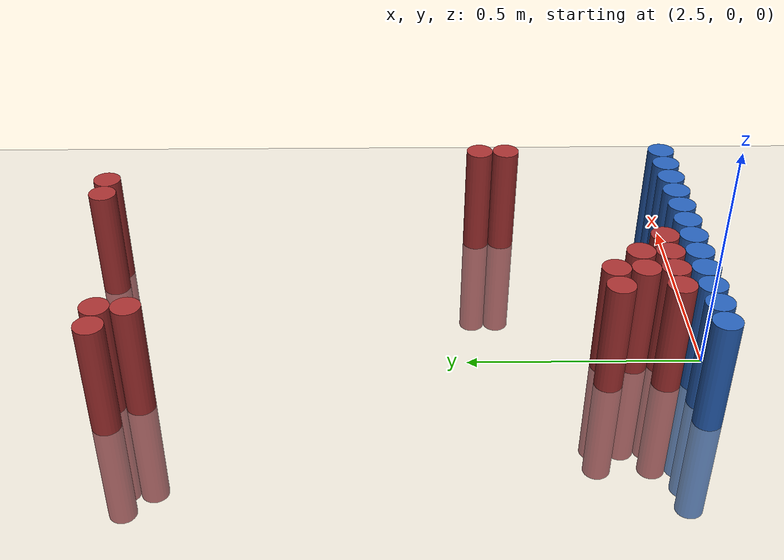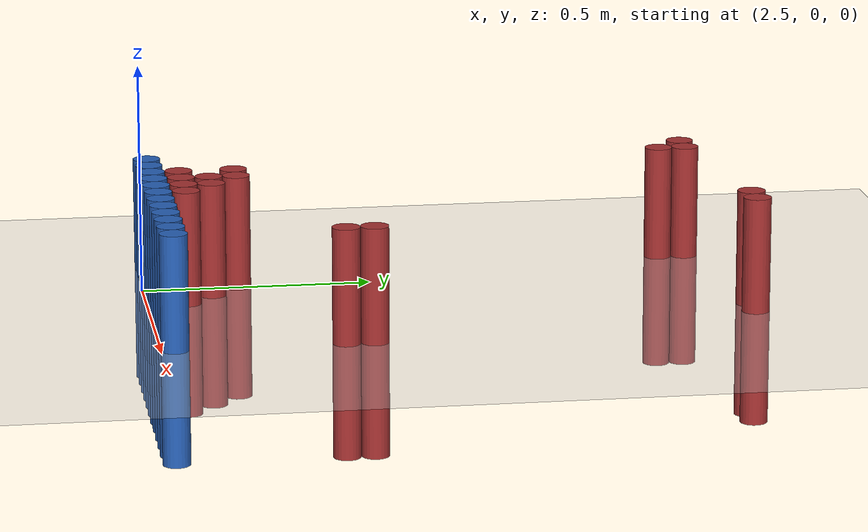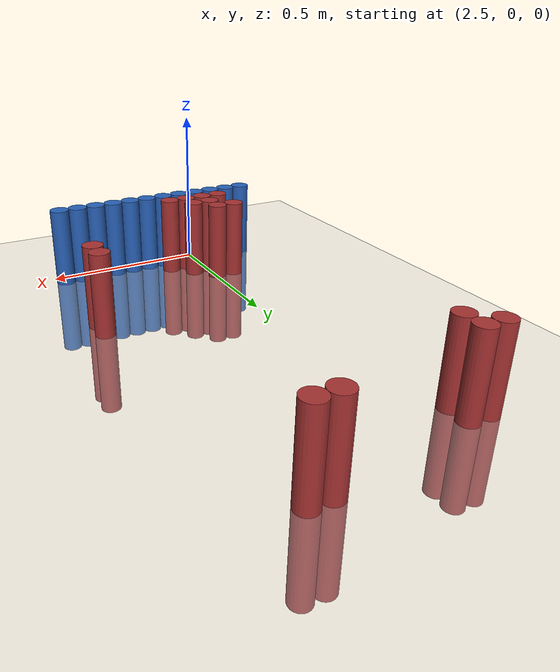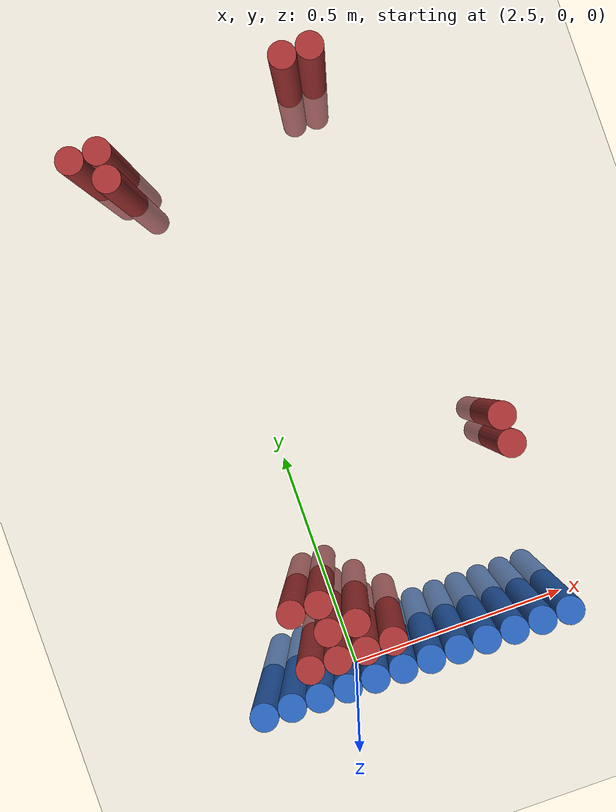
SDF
<sdf version="1.6">
 <world name="default">
  <model name="ground_plane">
   <static>1</static>
   <link name="link">
    <collision name="collision">
     <geometry><plane><normal>0 0 1</normal><size>100 100</size></plane></geometry>
     <surface><friction><ode><mu>100</mu><mu2>50</mu2></ode></friction></surface>
    </collision>
    <visual name="visual">
     <cast_shadows>0</cast_shadows>
     <geometry><plane><normal>0 0 1</normal><size>100 100</size></plane></geometry>
     <material>
      <script><uri>file://media/materials/scripts/gazebo.material</uri><name>Gazebo/Grey</name></script>
     </material>
    </visual>
   </link>
  </model>
  <model name="unit_cylinder_154">
   <static>1</static>
   <pose>2.790000 1.290000 0.000000 0.000000 0.000000 0.000000</pose>
   <link name="link">
    <inertial>
     <mass>1</mass>
     <inertia><ixx>0.145833</ixx><ixy>0</ixy><ixz>0</ixz><iyy>0.145833</iyy><iyz>0</iyz><izz>0.125</izz></inertia>
    </inertial>
    <collision name="collision">
     <geometry><cylinder><radius>0.030000</radius><length>0.5</length></cylinder></geometry>
    </collision>
    <visual name="visual">
     <geometry><cylinder><radius>0.030000</radius><length>0.5</length></cylinder></geometry>
     <material>
      <ambient>0.648000 0.192000 0.192000 1</ambient>
      <diffuse>0.648000 0.192000 0.192000 1</diffuse>
     </material>
     <material>
      <script><name>Gazebo/Grey</name><uri>file://media/materials/scripts/gazebo.material</uri></script>
     </material>
    </visual>
   </link>
  </model>
  <model name="unit_cylinder_155">
   <static>1</static>
   <pose>2.850000 1.290000 0.000000 0.000000 0.000000 0.000000</pose>
   <link name="link">
    <inertial>
     <mass>1</mass>
     <inertia><ixx>0.145833</ixx><ixy>0</ixy><ixz>0</ixz><iyy>0.145833</iyy><iyz>0</iyz><izz>0.125</izz></inertia>
    </inertial>
    <collision name="collision">
     <geometry><cylinder><radius>0.030000</radius><length>0.5</length></cylinder></geometry>
    </collision>
    <visual name="visual">
     <geometry><cylinder><radius>0.030000</radius><length>0.5</length></cylinder></geometry>
     <material>
      <ambient>0.648000 0.192000 0.192000 1</ambient>
      <diffuse>0.648000 0.192000 0.192000 1</diffuse>
     </material>
     <material>
      <script><name>Gazebo/Grey</name><uri>file://media/materials/scripts/gazebo.material</uri></script>
     </material>
    </visual>
   </link>
  </model>
  <model name="unit_cylinder_159">
   <static>1</static>
   <pose>2.310000 1.230000 0.000000 0.000000 0.000000 0.000000</pose>
   <link name="link">
    <inertial>
     <mass>1</mass>
     <inertia><ixx>0.145833</ixx><ixy>0</ixy><ixz>0</ixz><iyy>0.145833</iyy><iyz>0</iyz><izz>0.125</izz></inertia>
    </inertial>
    <collision name="collision">
     <geometry><cylinder><radius>0.030000</radius><length>0.5</length></cylinder></geometry>
    </collision>
    <visual name="visual">
     <geometry><cylinder><radius>0.030000</radius><length>0.5</length></cylinder></geometry>
     <material>
      <ambient>0.648000 0.192000 0.192000 1</ambient>
      <diffuse>0.648000 0.192000 0.192000 1</diffuse>
     </material>
     <material>
      <script><name>Gazebo/Grey</name><uri>file://media/materials/scripts/gazebo.material</uri></script>
     </material>
    </visual>
   </link>
  </model>
  <model name="unit_cylinder_160">
   <static>1</static>
   <pose>2.370000 1.230000 0.000000 0.000000 0.000000 0.000000</pose>
   <link name="link">
    <inertial>
     <mass>1</mass>
     <inertia><ixx>0.145833</ixx><ixy>0</ixy><ixz>0</ixz><iyy>0.145833</iyy><iyz>0</iyz><izz>0.125</izz></inertia>
    </inertial>
    <collision name="collision">
     <geometry><cylinder><radius>0.030000</radius><length>0.5</length></cylinder></geometry>
    </collision>
    <visual name="visual">
     <geometry><cylinder><radius>0.030000</radius><length>0.5</length></cylinder></geometry>
     <material>
      <ambient>0.648000 0.192000 0.192000 1</ambient>
      <diffuse>0.648000 0.192000 0.192000 1</diffuse>
     </material>
     <material>
      <script><name>Gazebo/Grey</name><uri>file://media/materials/scripts/gazebo.material</uri></script>
     </material>
    </visual>
   </link>
  </model>
  <model name="unit_cylinder_163">
   <static>1</static>
   <pose>2.370000 1.170000 0.000000 0.000000 0.000000 0.000000</pose>
   <link name="link">
    <inertial>
     <mass>1</mass>
     <inertia><ixx>0.145833</ixx><ixy>0</ixy><ixz>0</ixz><iyy>0.145833</iyy><iyz>0</iyz><izz>0.125</izz></inertia>
    </inertial>
    <collision name="collision">
     <geometry><cylinder><radius>0.030000</radius><length>0.5</length></cylinder></geometry>
    </collision>
    <visual name="visual">
     <geometry><cylinder><radius>0.030000</radius><length>0.5</length></cylinder></geometry>
     <material>
      <ambient>0.648000 0.192000 0.192000 1</ambient>
      <diffuse>0.648000 0.192000 0.192000 1</diffuse>
     </material>
     <material>
      <script><name>Gazebo/Grey</name><uri>file://media/materials/scripts/gazebo.material</uri></script>
     </material>
    </visual>
   </link>
  </model>
  <model name="unit_cylinder_169">
   <static>1</static>
   <pose>2.970000 0.450000 0.000000 0.000000 0.000000 0.000000</pose>
   <link name="link">
    <inertial>
     <mass>1</mass>
     <inertia><ixx>0.145833</ixx><ixy>0</ixy><ixz>0</ixz><iyy>0.145833</iyy><iyz>0</iyz><izz>0.125</izz></inertia>
    </inertial>
    <collision name="collision">
     <geometry><cylinder><radius>0.030000</radius><length>0.5</length></cylinder></geometry>
    </collision>
    <visual name="visual">
     <geometry><cylinder><radius>0.030000</radius><length>0.5</length></cylinder></geometry>
     <material>
      <ambient>0.648000 0.192000 0.192000 1</ambient>
      <diffuse>0.648000 0.192000 0.192000 1</diffuse>
     </material>
     <material>
      <script><name>Gazebo/Grey</name><uri>file://media/materials/scripts/gazebo.material</uri></script>
     </material>
    </visual>
   </link>
  </model>
  <model name="unit_cylinder_171">
   <static>1</static>
   <pose>2.970000 0.390000 0.000000 0.000000 0.000000 0.000000</pose>
   <link name="link">
    <inertial>
     <mass>1</mass>
     <inertia><ixx>0.145833</ixx><ixy>0</ixy><ixz>0</ixz><iyy>0.145833</iyy><iyz>0</iyz><izz>0.125</izz></inertia>
    </inertial>
    <collision name="collision">
     <geometry><cylinder><radius>0.030000</radius><length>0.5</length></cylinder></geometry>
    </collision>
    <visual name="visual">
     <geometry><cylinder><radius>0.030000</radius><length>0.5</length></cylinder></geometry>
     <material>
      <ambient>0.648000 0.192000 0.192000 1</ambient>
      <diffuse>0.648000 0.192000 0.192000 1</diffuse>
     </material>
     <material>
      <script><name>Gazebo/Grey</name><uri>file://media/materials/scripts/gazebo.material</uri></script>
     </material>
    </visual>
   </link>
  </model>
  <model name="unit_cylinder_172">
   <static>1</static>
   <pose>2.430000 0.210000 0.000000 0.000000 0.000000 0.000000</pose>
   <link name="link">
    <inertial>
     <mass>1</mass>
     <inertia><ixx>0.145833</ixx><ixy>0</ixy><ixz>0</ixz><iyy>0.145833</iyy><iyz>0</iyz><izz>0.125</izz></inertia>
    </inertial>
    <collision name="collision">
     <geometry><cylinder><radius>0.030000</radius><length>0.5</length></cylinder></geometry>
    </collision>
    <visual name="visual">
     <geometry><cylinder><radius>0.030000</radius><length>0.5</length></cylinder></geometry>
     <material>
      <ambient>0.648000 0.192000 0.192000 1</ambient>
      <diffuse>0.648000 0.192000 0.192000 1</diffuse>
     </material>
     <material>
      <script><name>Gazebo/Grey</name><uri>file://media/materials/scripts/gazebo.material</uri></script>
     </material>
    </visual>
   </link>
  </model>
  <model name="unit_cylinder_173">
   <static>1</static>
   <pose>2.490000 0.210000 0.000000 0.000000 0.000000 0.000000</pose>
   <link name="link">
    <inertial>
     <mass>1</mass>
     <inertia><ixx>0.145833</ixx><ixy>0</ixy><ixz>0</ixz><iyy>0.145833</iyy><iyz>0</iyz><izz>0.125</izz></inertia>
    </inertial>
    <collision name="collision">
     <geometry><cylinder><radius>0.030000</radius><length>0.5</length></cylinder></geometry>
    </collision>
    <visual name="visual">
     <geometry><cylinder><radius>0.030000</radius><length>0.5</length></cylinder></geometry>
     <material>
      <ambient>0.648000 0.192000 0.192000 1</ambient>
      <diffuse>0.648000 0.192000 0.192000 1</diffuse>
     </material>
     <material>
      <script><name>Gazebo/Grey</name><uri>file://media/materials/scripts/gazebo.material</uri></script>
     </material>
    </visual>
   </link>
  </model>
  <model name="unit_cylinder_174">
   <static>1</static>
   <pose>2.490000 0.150000 0.000000 0.000000 0.000000 0.000000</pose>
   <link name="link">
    <inertial>
     <mass>1</mass>
     <inertia><ixx>0.145833</ixx><ixy>0</ixy><ixz>0</ixz><iyy>0.145833</iyy><iyz>0</iyz><izz>0.125</izz></inertia>
    </inertial>
    <collision name="collision">
     <geometry><cylinder><radius>0.030000</radius><length>0.5</length></cylinder></geometry>
    </collision>
    <visual name="visual">
     <geometry><cylinder><radius>0.030000</radius><length>0.5</length></cylinder></geometry>
     <material>
      <ambient>0.648000 0.192000 0.192000 1</ambient>
      <diffuse>0.648000 0.192000 0.192000 1</diffuse>
     </material>
     <material>
      <script><name>Gazebo/Grey</name><uri>file://media/materials/scripts/gazebo.material</uri></script>
     </material>
    </visual>
   </link>
  </model>
  <model name="unit_cylinder_175">
   <static>1</static>
   <pose>2.550000 0.150000 0.000000 0.000000 0.000000 0.000000</pose>
   <link name="link">
    <inertial>
     <mass>1</mass>
     <inertia><ixx>0.145833</ixx><ixy>0</ixy><ixz>0</ixz><iyy>0.145833</iyy><iyz>0</iyz><izz>0.125</izz></inertia>
    </inertial>
    <collision name="collision">
     <geometry><cylinder><radius>0.030000</radius><length>0.5</length></cylinder></geometry>
    </collision>
    <visual name="visual">
     <geometry><cylinder><radius>0.030000</radius><length>0.5</length></cylinder></geometry>
     <material>
      <ambient>0.648000 0.192000 0.192000 1</ambient>
      <diffuse>0.648000 0.192000 0.192000 1</diffuse>
     </material>
     <material>
      <script><name>Gazebo/Grey</name><uri>file://media/materials/scripts/gazebo.material</uri></script>
     </material>
    </visual>
   </link>
  </model>
  <model name="unit_cylinder_179">
   <static>1</static>
   <pose>2.430000 0.090000 0.000000 0.000000 0.000000 0.000000</pose>
   <link name="link">
    <inertial>
     <mass>1</mass>
     <inertia><ixx>0.145833</ixx><ixy>0</ixy><ixz>0</ixz><iyy>0.145833</iyy><iyz>0</iyz><izz>0.125</izz></inertia>
    </inertial>
    <collision name="collision">
     <geometry><cylinder><radius>0.030000</radius><length>0.5</length></cylinder></geometry>
    </collision>
    <visual name="visual">
     <geometry><cylinder><radius>0.030000</radius><length>0.5</length></cylinder></geometry>
     <material>
      <ambient>0.648000 0.192000 0.192000 1</ambient>
      <diffuse>0.648000 0.192000 0.192000 1</diffuse>
     </material>
     <material>
      <script><name>Gazebo/Grey</name><uri>file://media/materials/scripts/gazebo.material</uri></script>
     </material>
    </visual>
   </link>
  </model>
  <model name="unit_cylinder_180">
   <static>1</static>
   <pose>2.490000 0.090000 0.000000 0.000000 0.000000 0.000000</pose>
   <link name="link">
    <inertial>
     <mass>1</mass>
     <inertia><ixx>0.145833</ixx><ixy>0</ixy><ixz>0</ixz><iyy>0.145833</iyy><iyz>0</iyz><izz>0.125</izz></inertia>
    </inertial>
    <collision name="collision">
     <geometry><cylinder><radius>0.030000</radius><length>0.5</length></cylinder></geometry>
    </collision>
    <visual name="visual">
     <geometry><cylinder><radius>0.030000</radius><length>0.5</length></cylinder></geometry>
     <material>
      <ambient>0.648000 0.192000 0.192000 1</ambient>
      <diffuse>0.648000 0.192000 0.192000 1</diffuse>
     </material>
     <material>
      <script><name>Gazebo/Grey</name><uri>file://media/materials/scripts/gazebo.material</uri></script>
     </material>
    </visual>
   </link>
  </model>
  <model name="unit_cylinder_181">
   <static>1</static>
   <pose>2.550000 0.090000 0.000000 0.000000 0.000000 0.000000</pose>
   <link name="link">
    <inertial>
     <mass>1</mass>
     <inertia><ixx>0.145833</ixx><ixy>0</ixy><ixz>0</ixz><iyy>0.145833</iyy><iyz>0</iyz><izz>0.125</izz></inertia>
    </inertial>
    <collision name="collision">
     <geometry><cylinder><radius>0.030000</radius><length>0.5</length></cylinder></geometry>
    </collision>
    <visual name="visual">
     <geometry><cylinder><radius>0.030000</radius><length>0.5</length></cylinder></geometry>
     <material>
      <ambient>0.648000 0.192000 0.192000 1</ambient>
      <diffuse>0.648000 0.192000 0.192000 1</diffuse>
     </material>
     <material>
      <script><name>Gazebo/Grey</name><uri>file://media/materials/scripts/gazebo.material</uri></script>
     </material>
    </visual>
   </link>
  </model>
  <model name="unit_cylinder_182">
   <static>1</static>
   <pose>2.610000 0.090000 0.000000 0.000000 0.000000 0.000000</pose>
   <link name="link">
    <inertial>
     <mass>1</mass>
     <inertia><ixx>0.145833</ixx><ixy>0</ixy><ixz>0</ixz><iyy>0.145833</iyy><iyz>0</iyz><izz>0.125</izz></inertia>
    </inertial>
    <collision name="collision">
     <geometry><cylinder><radius>0.030000</radius><length>0.5</length></cylinder></geometry>
    </collision>
    <visual name="visual">
     <geometry><cylinder><radius>0.030000</radius><length>0.5</length></cylinder></geometry>
     <material>
      <ambient>0.648000 0.192000 0.192000 1</ambient>
      <diffuse>0.648000 0.192000 0.192000 1</diffuse>
     </material>
     <material>
      <script><name>Gazebo/Grey</name><uri>file://media/materials/scripts/gazebo.material</uri></script>
     </material>
    </visual>
   </link>
  </model>
  <model name="unit_cylinder_189">
   <static>1</static>
   <pose>2.310000 0.030000 0.000000 0.000000 0.000000 0.000000</pose>
   <link name="link">
    <inertial>
     <mass>1</mass>
     <inertia><ixx>0.145833</ixx><ixy>0</ixy><ixz>0</ixz><iyy>0.145833</iyy><iyz>0</iyz><izz>0.125</izz></inertia>
    </inertial>
    <collision name="collision">
     <geometry><cylinder><radius>0.030000</radius><length>0.5</length></cylinder></geometry>
    </collision>
    <visual name="visual">
     <geometry><cylinder><radius>0.030000</radius><length>0.5</length></cylinder></geometry>
     <material>
      <ambient>0.152000 0.379000 0.720000 1</ambient>
      <diffuse>0.152000 0.379000 0.720000 1</diffuse>
     </material>
     <material>
      <script><name>Gazebo/Grey</name><uri>file://media/materials/scripts/gazebo.material</uri></script>
     </material>
    </visual>
   </link>
  </model>
  <model name="unit_cylinder_190">
   <static>1</static>
   <pose>2.370000 0.030000 0.000000 0.000000 0.000000 0.000000</pose>
   <link name="link">
    <inertial>
     <mass>1</mass>
     <inertia><ixx>0.145833</ixx><ixy>0</ixy><ixz>0</ixz><iyy>0.145833</iyy><iyz>0</iyz><izz>0.125</izz></inertia>
    </inertial>
    <collision name="collision">
     <geometry><cylinder><radius>0.030000</radius><length>0.5</length></cylinder></geometry>
    </collision>
    <visual name="visual">
     <geometry><cylinder><radius>0.030000</radius><length>0.5</length></cylinder></geometry>
     <material>
      <ambient>0.152000 0.379000 0.720000 1</ambient>
      <diffuse>0.152000 0.379000 0.720000 1</diffuse>
     </material>
     <material>
      <script><name>Gazebo/Grey</name><uri>file://media/materials/scripts/gazebo.material</uri></script>
     </material>
    </visual>
   </link>
  </model>
  <model name="unit_cylinder_191">
   <static>1</static>
   <pose>2.430000 0.030000 0.000000 0.000000 0.000000 0.000000</pose>
   <link name="link">
    <inertial>
     <mass>1</mass>
     <inertia><ixx>0.145833</ixx><ixy>0</ixy><ixz>0</ixz><iyy>0.145833</iyy><iyz>0</iyz><izz>0.125</izz></inertia>
    </inertial>
    <collision name="collision">
     <geometry><cylinder><radius>0.030000</radius><length>0.5</length></cylinder></geometry>
    </collision>
    <visual name="visual">
     <geometry><cylinder><radius>0.030000</radius><length>0.5</length></cylinder></geometry>
     <material>
      <ambient>0.152000 0.379000 0.720000 1</ambient>
      <diffuse>0.152000 0.379000 0.720000 1</diffuse>
     </material>
     <material>
      <script><name>Gazebo/Grey</name><uri>file://media/materials/scripts/gazebo.material</uri></script>
     </material>
    </visual>
   </link>
  </model>
  <model name="unit_cylinder_192">
   <static>1</static>
   <pose>2.490000 0.030000 0.000000 0.000000 0.000000 0.000000</pose>
   <link name="link">
    <inertial>
     <mass>1</mass>
     <inertia><ixx>0.145833</ixx><ixy>0</ixy><ixz>0</ixz><iyy>0.145833</iyy><iyz>0</iyz><izz>0.125</izz></inertia>
    </inertial>
    <collision name="collision">
     <geometry><cylinder><radius>0.030000</radius><length>0.5</length></cylinder></geometry>
    </collision>
    <visual name="visual">
     <geometry><cylinder><radius>0.030000</radius><length>0.5</length></cylinder></geometry>
     <material>
      <ambient>0.152000 0.379000 0.720000 1</ambient>
      <diffuse>0.152000 0.379000 0.720000 1</diffuse>
     </material>
     <material>
      <script><name>Gazebo/Grey</name><uri>file://media/materials/scripts/gazebo.material</uri></script>
     </material>
    </visual>
   </link>
  </model>
  <model name="unit_cylinder_193">
   <static>1</static>
   <pose>2.550000 0.030000 0.000000 0.000000 0.000000 0.000000</pose>
   <link name="link">
    <inertial>
     <mass>1</mass>
     <inertia><ixx>0.145833</ixx><ixy>0</ixy><ixz>0</ixz><iyy>0.145833</iyy><iyz>0</iyz><izz>0.125</izz></inertia>
    </inertial>
    <collision name="collision">
     <geometry><cylinder><radius>0.030000</radius><length>0.5</length></cylinder></geometry>
    </collision>
    <visual name="visual">
     <geometry><cylinder><radius>0.030000</radius><length>0.5</length></cylinder></geometry>
     <material>
      <ambient>0.152000 0.379000 0.720000 1</ambient>
      <diffuse>0.152000 0.379000 0.720000 1</diffuse>
     </material>
     <material>
      <script><name>Gazebo/Grey</name><uri>file://media/materials/scripts/gazebo.material</uri></script>
     </material>
    </visual>
   </link>
  </model>
  <model name="unit_cylinder_194">
   <static>1</static>
   <pose>2.610000 0.030000 0.000000 0.000000 0.000000 0.000000</pose>
   <link name="link">
    <inertial>
     <mass>1</mass>
     <inertia><ixx>0.145833</ixx><ixy>0</ixy><ixz>0</ixz><iyy>0.145833</iyy><iyz>0</iyz><izz>0.125</izz></inertia>
    </inertial>
    <collision name="collision">
     <geometry><cylinder><radius>0.030000</radius><length>0.5</length></cylinder></geometry>
    </collision>
    <visual name="visual">
     <geometry><cylinder><radius>0.030000</radius><length>0.5</length></cylinder></geometry>
     <material>
      <ambient>0.152000 0.379000 0.720000 1</ambient>
      <diffuse>0.152000 0.379000 0.720000 1</diffuse>
     </material>
     <material>
      <script><name>Gazebo/Grey</name><uri>file://media/materials/scripts/gazebo.material</uri></script>
     </material>
    </visual>
   </link>
  </model>
  <model name="unit_cylinder_195">
   <static>1</static>
   <pose>2.670000 0.030000 0.000000 0.000000 0.000000 0.000000</pose>
   <link name="link">
    <inertial>
     <mass>1</mass>
     <inertia><ixx>0.145833</ixx><ixy>0</ixy><ixz>0</ixz><iyy>0.145833</iyy><iyz>0</iyz><izz>0.125</izz></inertia>
    </inertial>
    <collision name="collision">
     <geometry><cylinder><radius>0.030000</radius><length>0.5</length></cylinder></geometry>
    </collision>
    <visual name="visual">
     <geometry><cylinder><radius>0.030000</radius><length>0.5</length></cylinder></geometry>
     <material>
      <ambient>0.152000 0.379000 0.720000 1</ambient>
      <diffuse>0.152000 0.379000 0.720000 1</diffuse>
     </material>
     <material>
      <script><name>Gazebo/Grey</name><uri>file://media/materials/scripts/gazebo.material</uri></script>
     </material>
    </visual>
   </link>
  </model>
  <model name="unit_cylinder_196">
   <static>1</static>
   <pose>2.730000 0.030000 0.000000 0.000000 0.000000 0.000000</pose>
   <link name="link">
    <inertial>
     <mass>1</mass>
     <inertia><ixx>0.145833</ixx><ixy>0</ixy><ixz>0</ixz><iyy>0.145833</iyy><iyz>0</iyz><izz>0.125</izz></inertia>
    </inertial>
    <collision name="collision">
     <geometry><cylinder><radius>0.030000</radius><length>0.5</length></cylinder></geometry>
    </collision>
    <visual name="visual">
     <geometry><cylinder><radius>0.030000</radius><length>0.5</length></cylinder></geometry>
     <material>
      <ambient>0.152000 0.379000 0.720000 1</ambient>
      <diffuse>0.152000 0.379000 0.720000 1</diffuse>
     </material>
     <material>
      <script><name>Gazebo/Grey</name><uri>file://media/materials/scripts/gazebo.material</uri></script>
     </material>
    </visual>
   </link>
  </model>
  <model name="unit_cylinder_197">
   <static>1</static>
   <pose>2.790000 0.030000 0.000000 0.000000 0.000000 0.000000</pose>
   <link name="link">
    <inertial>
     <mass>1</mass>
     <inertia><ixx>0.145833</ixx><ixy>0</ixy><ixz>0</ixz><iyy>0.145833</iyy><iyz>0</iyz><izz>0.125</izz></inertia>
    </inertial>
    <collision name="collision">
     <geometry><cylinder><radius>0.030000</radius><length>0.5</length></cylinder></geometry>
    </collision>
    <visual name="visual">
     <geometry><cylinder><radius>0.030000</radius><length>0.5</length></cylinder></geometry>
     <material>
      <ambient>0.152000 0.379000 0.720000 1</ambient>
      <diffuse>0.152000 0.379000 0.720000 1</diffuse>
     </material>
     <material>
      <script><name>Gazebo/Grey</name><uri>file://media/materials/scripts/gazebo.material</uri></script>
     </material>
    </visual>
   </link>
  </model>
  <model name="unit_cylinder_198">
   <static>1</static>
   <pose>2.850000 0.030000 0.000000 0.000000 0.000000 0.000000</pose>
   <link name="link">
    <inertial>
     <mass>1</mass>
     <inertia><ixx>0.145833</ixx><ixy>0</ixy><ixz>0</ixz><iyy>0.145833</iyy><iyz>0</iyz><izz>0.125</izz></inertia>
    </inertial>
    <collision name="collision">
     <geometry><cylinder><radius>0.030000</radius><length>0.5</length></cylinder></geometry>
    </collision>
    <visual name="visual">
     <geometry><cylinder><radius>0.030000</radius><length>0.5</length></cylinder></geometry>
     <material>
      <ambient>0.152000 0.379000 0.720000 1</ambient>
      <diffuse>0.152000 0.379000 0.720000 1</diffuse>
     </material>
     <material>
      <script><name>Gazebo/Grey</name><uri>file://media/materials/scripts/gazebo.material</uri></script>
     </material>
    </visual>
   </link>
  </model>
  <model name="unit_cylinder_199">
   <static>1</static>
   <pose>2.910000 0.030000 0.000000 0.000000 0.000000 0.000000</pose>
   <link name="link">
    <inertial>
     <mass>1</mass>
     <inertia><ixx>0.145833</ixx><ixy>0</ixy><ixz>0</ixz><iyy>0.145833</iyy><iyz>0</iyz><izz>0.125</izz></inertia>
    </inertial>
    <collision name="collision">
     <geometry><cylinder><radius>0.030000</radius><length>0.5</length></cylinder></geometry>
    </collision>
    <visual name="visual">
     <geometry><cylinder><radius>0.030000</radius><length>0.5</length></cylinder></geometry>
     <material>
      <ambient>0.152000 0.379000 0.720000 1</ambient>
      <diffuse>0.152000 0.379000 0.720000 1</diffuse>
     </material>
     <material>
      <script><name>Gazebo/Grey</name><uri>file://media/materials/scripts/gazebo.material</uri></script>
     </material>
    </visual>
   </link>
  </model>
  <model name="unit_cylinder_200">
   <static>1</static>
   <pose>2.970000 0.030000 0.000000 0.000000 0.000000 0.000000</pose>
   <link name="link">
    <inertial>
     <mass>1</mass>
     <inertia><ixx>0.145833</ixx><ixy>0</ixy><ixz>0</ixz><iyy>0.145833</iyy><iyz>0</iyz><izz>0.125</izz></inertia>
    </inertial>
    <collision name="collision">
     <geometry><cylinder><radius>0.030000</radius><length>0.5</length></cylinder></geometry>
    </collision>
    <visual name="visual">
     <geometry><cylinder><radius>0.030000</radius><length>0.5</length></cylinder></geometry>
     <material>
      <ambient>0.152000 0.379000 0.720000 1</ambient>
      <diffuse>0.152000 0.379000 0.720000 1</diffuse>
     </material>
     <material>
      <script><name>Gazebo/Grey</name><uri>file://media/materials/scripts/gazebo.material</uri></script>
     </material>
    </visual>
   </link>
  </model>
 </world>
</sdf>
